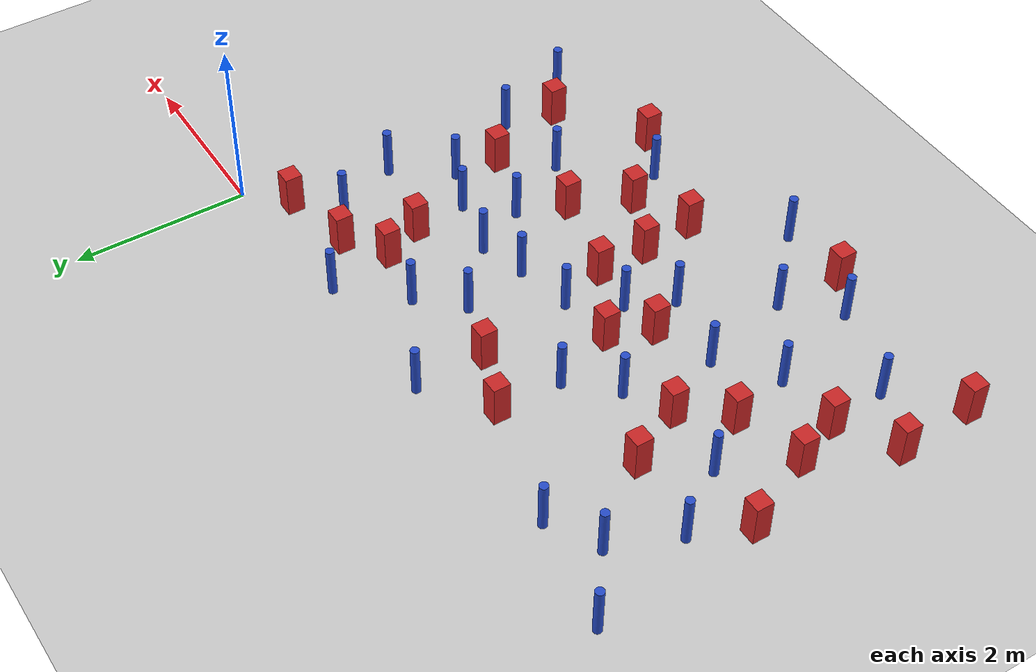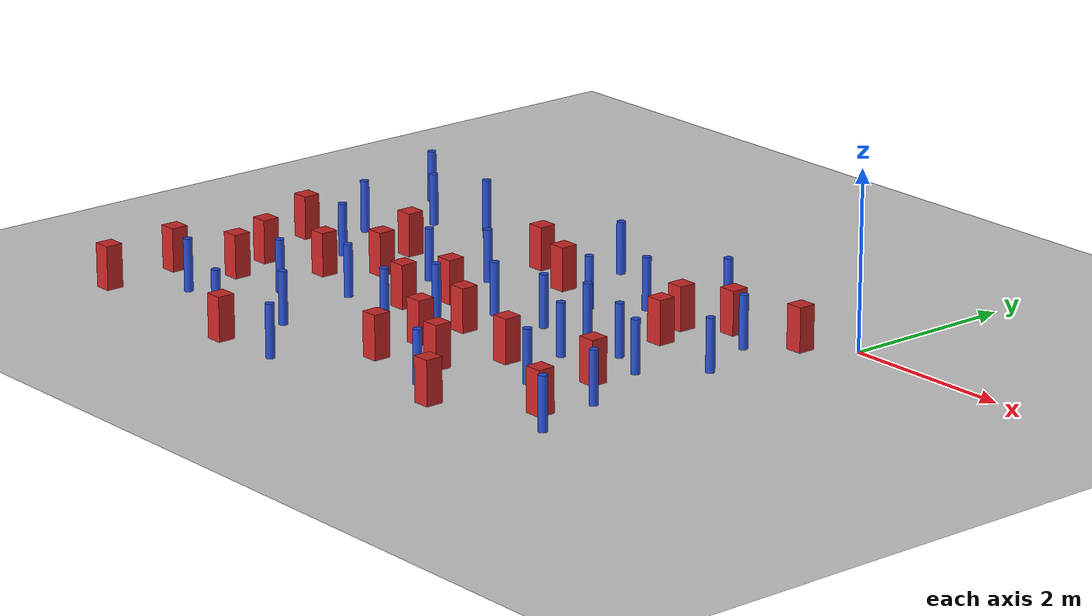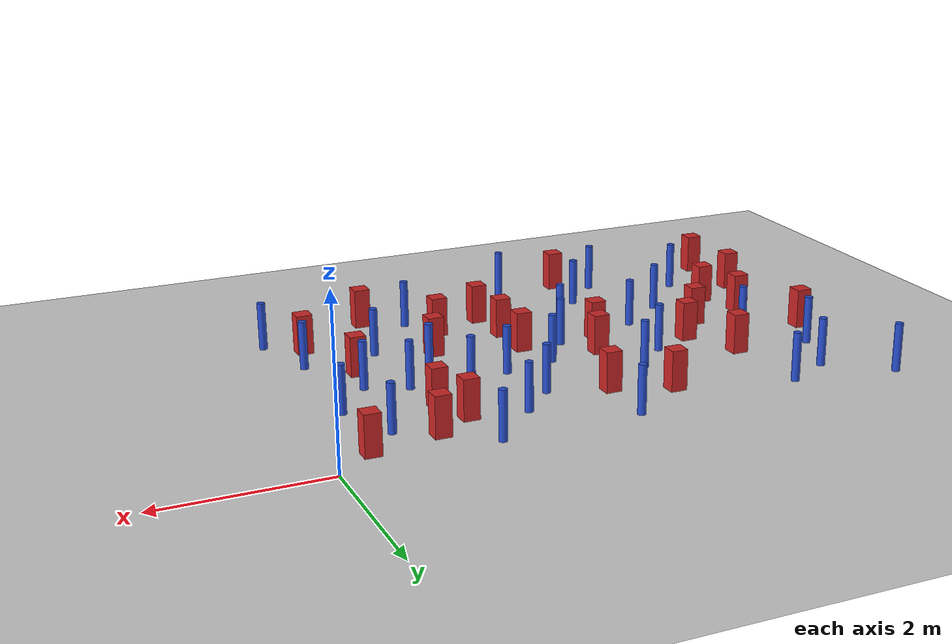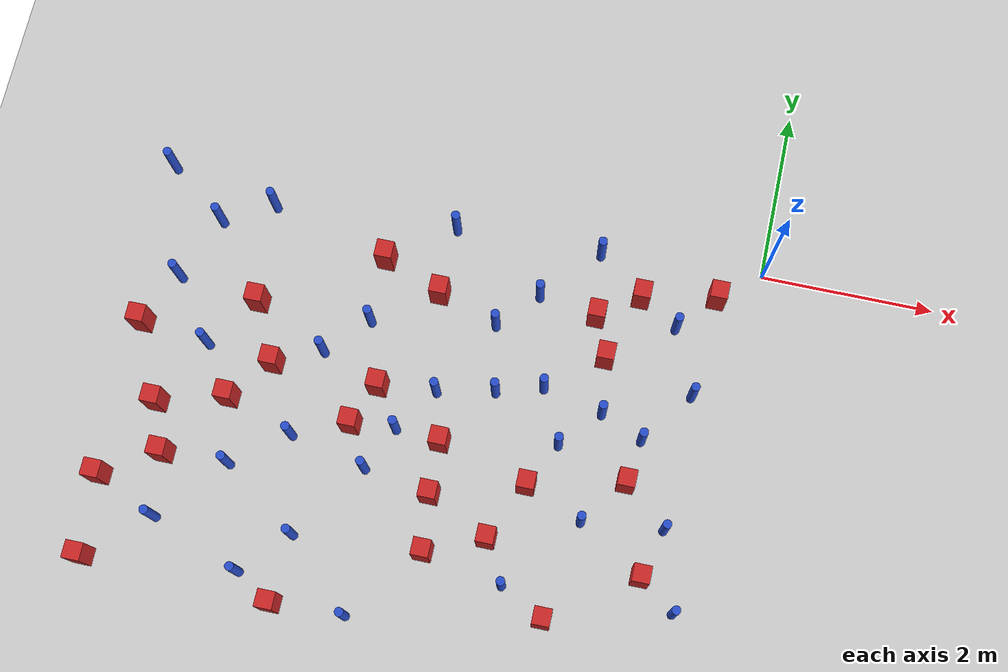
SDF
<sdf version="1.6">
 <world name="default">
  <model name="ground_plane">
   <static>1</static>
   <link name="link">
    <collision name="collision">
     <geometry><plane><normal>0 0 1</normal><size>100 100</size></plane></geometry>
     <surface><friction><ode><mu>100</mu><mu2>50</mu2></ode></friction></surface>
    </collision>
    <visual name="visual">
     <cast_shadows>0</cast_shadows>
     <geometry><plane><normal>0 0 1</normal><size>100 100</size></plane></geometry>
     <material>
      <ambient>1.0 1.0 1.0 1.0</ambient>
      <diffuse>0.8 0.8 0.8 1.0</diffuse>
      <specular>0.01 0.01 0.01 1.000000</specular>
     </material>
    </visual>
   </link>
  </model>
  <model name="pole_obstacle4">
   <static>true</static>
   <pose>-6.97828642345 -0.122020516377 7.38925637345e-09 -8.47170692799e-08 1.24976765077e-08 -1.74513093018e-07</pose>
   <link name="link">
    <pose>0 0 0.3 0 -0 0</pose>
    <inertial>
     <mass>1</mass>
     <inertia><ixx>0.145833</ixx><ixy>0</ixy><ixz>0</ixz><iyy>0.145833</iyy><iyz>0</iyz><izz>0.125</izz></inertia>
    </inertial>
    <collision name="collision">
     <geometry><cylinder><radius>0.05</radius><length>.6</length></cylinder></geometry>
    </collision>
    <visual name="visual">
     <geometry><cylinder><radius>0.05</radius><length>.6</length></cylinder></geometry>
     <material>
      <script><name>Gazebo/Blue</name><uri>file://media/materials/scripts/gazebo.material</uri></script>
     </material>
    </visual>
   </link>
  </model>
  <model name="pole_obstacle6">
   <static>true</static>
   <pose>-5.47152943793 -3.41896249044 7.38925637345e-09 -8.47170692798e-08 1.24976764937e-08 -1.74513093023e-07</pose>
   <link name="link">
    <pose>0 0 0.3 0 -0 0</pose>
    <inertial>
     <mass>1</mass>
     <inertia><ixx>0.145833</ixx><ixy>0</ixy><ixz>0</ixz><iyy>0.145833</iyy><iyz>0</iyz><izz>0.125</izz></inertia>
    </inertial>
    <collision name="collision">
     <geometry><cylinder><radius>0.05</radius><length>.6</length></cylinder></geometry>
    </collision>
    <visual name="visual">
     <geometry><cylinder><radius>0.05</radius><length>.6</length></cylinder></geometry>
     <material>
      <script><name>Gazebo/Blue</name><uri>file://media/materials/scripts/gazebo.material</uri></script>
     </material>
    </visual>
   </link>
  </model>
  <model name="pole_obstacle14">
   <static>true</static>
   <pose>-6.56713105272 -1.41324217185 7.38925637345e-09 -8.471706928e-08 1.24976765134e-08 -1.74513093015e-07</pose>
   <link name="link">
    <pose>0 0 0.3 0 -0 0</pose>
    <inertial>
     <mass>1</mass>
     <inertia><ixx>0.145833</ixx><ixy>0</ixy><ixz>0</ixz><iyy>0.145833</iyy><iyz>0</iyz><izz>0.125</izz></inertia>
    </inertial>
    <collision name="collision">
     <geometry><cylinder><radius>0.05</radius><length>.6</length></cylinder></geometry>
    </collision>
    <visual name="visual">
     <geometry><cylinder><radius>0.05</radius><length>.6</length></cylinder></geometry>
     <material>
      <script><name>Gazebo/Blue</name><uri>file://media/materials/scripts/gazebo.material</uri></script>
     </material>
    </visual>
   </link>
  </model>
  <model name="pole_obstacle15">
   <static>true</static>
   <pose>-5.07149582232 -4.56152207315 7.38925637345e-09 -8.47170692796e-08 1.24976764786e-08 -1.74513093032e-07</pose>
   <link name="link">
    <pose>0 0 0.3 0 -0 0</pose>
    <inertial>
     <mass>1</mass>
     <inertia><ixx>0.145833</ixx><ixy>0</ixy><ixz>0</ixz><iyy>0.145833</iyy><iyz>0</iyz><izz>0.125</izz></inertia>
    </inertial>
    <collision name="collision">
     <geometry><cylinder><radius>0.05</radius><length>.6</length></cylinder></geometry>
    </collision>
    <visual name="visual">
     <geometry><cylinder><radius>0.05</radius><length>.6</length></cylinder></geometry>
     <material>
      <script><name>Gazebo/Blue</name><uri>file://media/materials/scripts/gazebo.material</uri></script>
     </material>
    </visual>
   </link>
  </model>
  <model name="square_post_obstacle25">
   <static>true</static>
   <pose>-3.21224001632 -2.687449287 1.91545236811e-07 -7.35059704564e-06 1.12565212e-07 2.39332434364e-05</pose>
   <link name="link">
    <pose>0 0 0.25 0 -0 0</pose>
    <inertial>
     <mass>100</mass>
     <inertia>
      <ixx>0.166667</ixx>
      <ixy>0</ixy>
      <ixz>0</ixz>
      <iyy>0.166667</iyy>
      <iyz>0</iyz>
      <izz>0.166667</izz>
     </inertia>
    </inertial>
    <collision name="collision"><geometry><box><size>.2 .2 .5</size></box></geometry></collision>
    <visual name="visual">
     <geometry><box><size>.2 .2 .5</size></box></geometry>
     <material>
      <script><name>Gazebo/Red</name><uri>file://media/materials/scripts/gazebo.material</uri></script>
     </material>
    </visual>
   </link>
  </model>
  <model name="square_post_obstacle30">
   <static>true</static>
   <pose>-1.08252601619 -2.7141180427 1.91545236811e-07 -7.35059704564e-06 1.12565212e-07 2.39332434364e-05</pose>
   <link name="link">
    <pose>0 0 0.25 0 -0 0</pose>
    <inertial>
     <mass>100</mass>
     <inertia>
      <ixx>0.166667</ixx>
      <ixy>0</ixy>
      <ixz>0</ixz>
      <iyy>0.166667</iyy>
      <iyz>0</iyz>
      <izz>0.166667</izz>
     </inertia>
    </inertial>
    <collision name="collision"><geometry><box><size>.2 .2 .5</size></box></geometry></collision>
    <visual name="visual">
     <geometry><box><size>.2 .2 .5</size></box></geometry>
     <material>
      <script><name>Gazebo/Red</name><uri>file://media/materials/scripts/gazebo.material</uri></script>
     </material>
    </visual>
   </link>
  </model>
  <model name="pole_obstacle20">
   <static>true</static>
   <pose>-6.13176661263 -4.16321985907 7.38925637345e-09 -8.47170692796e-08 1.24976764786e-08 -1.74513093032e-07</pose>
   <link name="link">
    <pose>0 0 0.3 0 -0 0</pose>
    <inertial>
     <mass>1</mass>
     <inertia><ixx>0.145833</ixx><ixy>0</ixy><ixz>0</ixz><iyy>0.145833</iyy><iyz>0</iyz><izz>0.125</izz></inertia>
    </inertial>
    <collision name="collision">
     <geometry><cylinder><radius>0.05</radius><length>.6</length></cylinder></geometry>
    </collision>
    <visual name="visual">
     <geometry><cylinder><radius>0.05</radius><length>.6</length></cylinder></geometry>
     <material>
      <script><name>Gazebo/Blue</name><uri>file://media/materials/scripts/gazebo.material</uri></script>
     </material>
    </visual>
   </link>
  </model>
  <model name="pole_obstacle21">
   <static>true</static>
   <pose>-0.307714321631 -4.03031959695 7.38925637345e-09 -8.471706928e-08 1.24976765121e-08 -1.74513093013e-07</pose>
   <link name="link">
    <pose>0 0 0.3 0 -0 0</pose>
    <inertial>
     <mass>1</mass>
     <inertia><ixx>0.145833</ixx><ixy>0</ixy><ixz>0</ixz><iyy>0.145833</iyy><iyz>0</iyz><izz>0.125</izz></inertia>
    </inertial>
    <collision name="collision">
     <geometry><cylinder><radius>0.05</radius><length>.6</length></cylinder></geometry>
    </collision>
    <visual name="visual">
     <geometry><cylinder><radius>0.05</radius><length>.6</length></cylinder></geometry>
     <material>
      <script><name>Gazebo/Blue</name><uri>file://media/materials/scripts/gazebo.material</uri></script>
     </material>
    </visual>
   </link>
  </model>
  <model name="square_post_obstacle36">
   <static>true</static>
   <pose>-1.78043701023 -0.893414500379 1.91545236811e-07 -7.35059704564e-06 1.12565212e-07 2.39332434364e-05</pose>
   <link name="link">
    <pose>0 0 0.25 0 -0 0</pose>
    <inertial>
     <mass>100</mass>
     <inertia>
      <ixx>0.166667</ixx>
      <ixy>0</ixy>
      <ixz>0</ixz>
      <iyy>0.166667</iyy>
      <iyz>0</iyz>
      <izz>0.166667</izz>
     </inertia>
    </inertial>
    <collision name="collision"><geometry><box><size>.2 .2 .5</size></box></geometry></collision>
    <visual name="visual">
     <geometry><box><size>.2 .2 .5</size></box></geometry>
     <material>
      <script><name>Gazebo/Red</name><uri>file://media/materials/scripts/gazebo.material</uri></script>
     </material>
    </visual>
   </link>
  </model>
  <model name="pole_obstacle42">
   <static>true</static>
   <pose>-1.49891377134 -1.99895230244 7.38925637345e-09 -8.47170692799e-08 1.24976765023e-08 -1.74513093019e-07</pose>
   <link name="link">
    <pose>0 0 0.3 0 -0 0</pose>
    <inertial>
     <mass>1</mass>
     <inertia><ixx>0.145833</ixx><ixy>0</ixy><ixz>0</ixz><iyy>0.145833</iyy><iyz>0</iyz><izz>0.125</izz></inertia>
    </inertial>
    <collision name="collision">
     <geometry><cylinder><radius>0.05</radius><length>.6</length></cylinder></geometry>
    </collision>
    <visual name="visual">
     <geometry><cylinder><radius>0.05</radius><length>.6</length></cylinder></geometry>
     <material>
      <script><name>Gazebo/Blue</name><uri>file://media/materials/scripts/gazebo.material</uri></script>
     </material>
    </visual>
   </link>
  </model>
  <model name="square_post_obstacle42">
   <static>true</static>
   <pose>-0.470619755698 -0.397356148031 1.91545236811e-07 -7.35059704564e-06 1.12565212e-07 2.39332434364e-05</pose>
   <link name="link">
    <pose>0 0 0.25 0 -0 0</pose>
    <inertial>
     <mass>100</mass>
     <inertia>
      <ixx>0.166667</ixx>
      <ixy>0</ixy>
      <ixz>0</ixz>
      <iyy>0.166667</iyy>
      <iyz>0</iyz>
      <izz>0.166667</izz>
     </inertia>
    </inertial>
    <collision name="collision"><geometry><box><size>.2 .2 .5</size></box></geometry></collision>
    <visual name="visual">
     <geometry><box><size>.2 .2 .5</size></box></geometry>
     <material>
      <script><name>Gazebo/Red</name><uri>file://media/materials/scripts/gazebo.material</uri></script>
     </material>
    </visual>
   </link>
  </model>
  <model name="square_post_obstacle44">
   <static>true</static>
   <pose>-6.8508309339 -2.01764892807 1.91545236811e-07 -7.35059704564e-06 1.12565212e-07 2.39332434364e-05</pose>
   <link name="link">
    <pose>0 0 0.25 0 -0 0</pose>
    <inertial>
     <mass>100</mass>
     <inertia>
      <ixx>0.166667</ixx>
      <ixy>0</ixy>
      <ixz>0</ixz>
      <iyy>0.166667</iyy>
      <iyz>0</iyz>
      <izz>0.166667</izz>
     </inertia>
    </inertial>
    <collision name="collision"><geometry><box><size>.2 .2 .5</size></box></geometry></collision>
    <visual name="visual">
     <geometry><box><size>.2 .2 .5</size></box></geometry>
     <material>
      <script><name>Gazebo/Red</name><uri>file://media/materials/scripts/gazebo.material</uri></script>
     </material>
    </visual>
   </link>
  </model>
  <model name="pole_obstacle47">
   <static>true</static>
   <pose>-4.7407045459 -1.93888154877 7.38925637345e-09 -8.471706928e-08 1.24976765134e-08 -1.74513093015e-07</pose>
   <link name="link">
    <pose>0 0 0.3 0 -0 0</pose>
    <inertial>
     <mass>1</mass>
     <inertia><ixx>0.145833</ixx><ixy>0</ixy><ixz>0</ixz><iyy>0.145833</iyy><iyz>0</iyz><izz>0.125</izz></inertia>
    </inertial>
    <collision name="collision">
     <geometry><cylinder><radius>0.05</radius><length>.6</length></cylinder></geometry>
    </collision>
    <visual name="visual">
     <geometry><cylinder><radius>0.05</radius><length>.6</length></cylinder></geometry>
     <material>
      <script><name>Gazebo/Blue</name><uri>file://media/materials/scripts/gazebo.material</uri></script>
     </material>
    </visual>
   </link>
  </model>
  <model name="pole_obstacle54">
   <static>true</static>
   <pose>-4.5809045447 -4.04532151931 7.38925637345e-09 -8.47170692796e-08 1.24976764791e-08 -1.74513093031e-07</pose>
   <link name="link">
    <pose>0 0 0.3 0 -0 0</pose>
    <inertial>
     <mass>1</mass>
     <inertia><ixx>0.145833</ixx><ixy>0</ixy><ixz>0</ixz><iyy>0.145833</iyy><iyz>0</iyz><izz>0.125</izz></inertia>
    </inertial>
    <collision name="collision">
     <geometry><cylinder><radius>0.05</radius><length>.6</length></cylinder></geometry>
    </collision>
    <visual name="visual">
     <geometry><cylinder><radius>0.05</radius><length>.6</length></cylinder></geometry>
     <material>
      <script><name>Gazebo/Blue</name><uri>file://media/materials/scripts/gazebo.material</uri></script>
     </material>
    </visual>
   </link>
  </model>
  <model name="square_post_obstacle64">
   <static>true</static>
   <pose>-5.66374018354 -2.67418703032 1.91545236811e-07 -7.35059704564e-06 1.12565212e-07 2.39332434364e-05</pose>
   <link name="link">
    <pose>0 0 0.25 0 -0 0</pose>
    <inertial>
     <mass>100</mass>
     <inertia>
      <ixx>0.166667</ixx>
      <ixy>0</ixy>
      <ixz>0</ixz>
      <iyy>0.166667</iyy>
      <iyz>0</iyz>
      <izz>0.166667</izz>
     </inertia>
    </inertial>
    <collision name="collision"><geometry><box><size>.2 .2 .5</size></box></geometry></collision>
    <visual name="visual">
     <geometry><box><size>.2 .2 .5</size></box></geometry>
     <material>
      <script><name>Gazebo/Red</name><uri>file://media/materials/scripts/gazebo.material</uri></script>
     </material>
    </visual>
   </link>
  </model>
  <model name="square_post_obstacle65">
   <static>true</static>
   <pose>-6.44182738781 -2.89032319352 1.91545236811e-07 -7.35059704564e-06 1.12565212e-07 2.39332434364e-05</pose>
   <link name="link">
    <pose>0 0 0.25 0 -0 0</pose>
    <inertial>
     <mass>100</mass>
     <inertia>
      <ixx>0.166667</ixx>
      <ixy>0</ixy>
      <ixz>0</ixz>
      <iyy>0.166667</iyy>
      <iyz>0</iyz>
      <izz>0.166667</izz>
     </inertia>
    </inertial>
    <collision name="collision"><geometry><box><size>.2 .2 .5</size></box></geometry></collision>
    <visual name="visual">
     <geometry><box><size>.2 .2 .5</size></box></geometry>
     <material>
      <script><name>Gazebo/Red</name><uri>file://media/materials/scripts/gazebo.material</uri></script>
     </material>
    </visual>
   </link>
  </model>
  <model name="pole_obstacle64">
   <static>true</static>
   <pose>-4.86457030965 -2.95545743978 7.38925637345e-09 -8.47170692798e-08 1.24976764937e-08 -1.74513093023e-07</pose>
   <link name="link">
    <pose>0 0 0.3 0 -0 0</pose>
    <inertial>
     <mass>1</mass>
     <inertia><ixx>0.145833</ixx><ixy>0</ixy><ixz>0</ixz><iyy>0.145833</iyy><iyz>0</iyz><izz>0.125</izz></inertia>
    </inertial>
    <collision name="collision">
     <geometry><cylinder><radius>0.05</radius><length>.6</length></cylinder></geometry>
    </collision>
    <visual name="visual">
     <geometry><cylinder><radius>0.05</radius><length>.6</length></cylinder></geometry>
     <material>
      <script><name>Gazebo/Blue</name><uri>file://media/materials/scripts/gazebo.material</uri></script>
     </material>
    </visual>
   </link>
  </model>
  <model name="square_post_obstacle69">
   <static>true</static>
   <pose>-5.60898819726 -1.51559767061 1.91545236811e-07 -7.35059704564e-06 1.12565212e-07 2.39332434364e-05</pose>
   <link name="link">
    <pose>0 0 0.25 0 -0 0</pose>
    <inertial>
     <mass>100</mass>
     <inertia>
      <ixx>0.166667</ixx>
      <ixy>0</ixy>
      <ixz>0</ixz>
      <iyy>0.166667</iyy>
      <iyz>0</iyz>
      <izz>0.166667</izz>
     </inertia>
    </inertial>
    <collision name="collision"><geometry><box><size>.2 .2 .5</size></box></geometry></collision>
    <visual name="visual">
     <geometry><box><size>.2 .2 .5</size></box></geometry>
     <material>
      <script><name>Gazebo/Red</name><uri>file://media/materials/scripts/gazebo.material</uri></script>
     </material>
    </visual>
   </link>
  </model>
  <model name="pole_obstacle67">
   <static>true</static>
   <pose>-4.29661398742 -1.478413802 7.38925637345e-09 -8.471706928e-08 1.24976765134e-08 -1.74513093015e-07</pose>
   <link name="link">
    <pose>0 0 0.3 0 -0 0</pose>
    <inertial>
     <mass>1</mass>
     <inertia><ixx>0.145833</ixx><ixy>0</ixy><ixz>0</ixz><iyy>0.145833</iyy><iyz>0</iyz><izz>0.125</izz></inertia>
    </inertial>
    <collision name="collision">
     <geometry><cylinder><radius>0.05</radius><length>.6</length></cylinder></geometry>
    </collision>
    <visual name="visual">
     <geometry><cylinder><radius>0.05</radius><length>.6</length></cylinder></geometry>
     <material>
      <script><name>Gazebo/Blue</name><uri>file://media/materials/scripts/gazebo.material</uri></script>
     </material>
    </visual>
   </link>
  </model>
  <model name="square_post_obstacle71">
   <static>true</static>
   <pose>-3.12418479222 -3.92707856376 1.91545236811e-07 -7.35059704564e-06 1.12565212e-07 2.39332434364e-05</pose>
   <link name="link">
    <pose>0 0 0.25 0 -0 0</pose>
    <inertial>
     <mass>100</mass>
     <inertia>
      <ixx>0.166667</ixx>
      <ixy>0</ixy>
      <ixz>0</ixz>
      <iyy>0.166667</iyy>
      <iyz>0</iyz>
      <izz>0.166667</izz>
     </inertia>
    </inertial>
    <collision name="collision"><geometry><box><size>.2 .2 .5</size></box></geometry></collision>
    <visual name="visual">
     <geometry><box><size>.2 .2 .5</size></box></geometry>
     <material>
      <script><name>Gazebo/Red</name><uri>file://media/materials/scripts/gazebo.material</uri></script>
     </material>
    </visual>
   </link>
  </model>
  <model name="square_post_obstacle72">
   <static>true</static>
   <pose>-4.29121775904 -0.713728275902 1.91545236811e-07 -7.35059704564e-06 1.12565212e-07 2.39332434364e-05</pose>
   <link name="link">
    <pose>0 0 0.25 0 -0 0</pose>
    <inertial>
     <mass>100</mass>
     <inertia>
      <ixx>0.166667</ixx>
      <ixy>0</ixy>
      <ixz>0</ixz>
      <iyy>0.166667</iyy>
      <iyz>0</iyz>
      <izz>0.166667</izz>
     </inertia>
    </inertial>
    <collision name="collision"><geometry><box><size>.2 .2 .5</size></box></geometry></collision>
    <visual name="visual">
     <geometry><box><size>.2 .2 .5</size></box></geometry>
     <material>
      <script><name>Gazebo/Red</name><uri>file://media/materials/scripts/gazebo.material</uri></script>
     </material>
    </visual>
   </link>
  </model>
  <model name="square_post_obstacle75">
   <static>true</static>
   <pose>-6.85224369591 -3.82735771257 1.91545236811e-07 -7.35059704564e-06 1.12565212e-07 2.39332434364e-05</pose>
   <link name="link">
    <pose>0 0 0.25 0 -0 0</pose>
    <inertial>
     <mass>100</mass>
     <inertia>
      <ixx>0.166667</ixx>
      <ixy>0</ixy>
      <ixz>0</ixz>
      <iyy>0.166667</iyy>
      <iyz>0</iyz>
      <izz>0.166667</izz>
     </inertia>
    </inertial>
    <collision name="collision"><geometry><box><size>.2 .2 .5</size></box></geometry></collision>
    <visual name="visual">
     <geometry><box><size>.2 .2 .5</size></box></geometry>
     <material>
      <script><name>Gazebo/Red</name><uri>file://media/materials/scripts/gazebo.material</uri></script>
     </material>
    </visual>
   </link>
  </model>
  <model name="pole_obstacle73">
   <static>true</static>
   <pose>-2.20044635976 -4.11546640587 7.38925637345e-09 -8.47170692798e-08 1.24976765033e-08 -1.74513093019e-07</pose>
   <link name="link">
    <pose>0 0 0.3 0 -0 0</pose>
    <inertial>
     <mass>1</mass>
     <inertia><ixx>0.145833</ixx><ixy>0</ixy><ixz>0</ixz><iyy>0.145833</iyy><iyz>0</iyz><izz>0.125</izz></inertia>
    </inertial>
    <collision name="collision">
     <geometry><cylinder><radius>0.05</radius><length>.6</length></cylinder></geometry>
    </collision>
    <visual name="visual">
     <geometry><cylinder><radius>0.05</radius><length>.6</length></cylinder></geometry>
     <material>
      <script><name>Gazebo/Blue</name><uri>file://media/materials/scripts/gazebo.material</uri></script>
     </material>
    </visual>
   </link>
  </model>
  <model name="pole_obstacle85">
   <static>true</static>
   <pose>-6.05392795432 -2.12139565184 7.38925637345e-09 -8.47170692798e-08 1.24976764937e-08 -1.74513093023e-07</pose>
   <link name="link">
    <pose>0 0 0.3 0 -0 0</pose>
    <inertial>
     <mass>1</mass>
     <inertia><ixx>0.145833</ixx><ixy>0</ixy><ixz>0</ixz><iyy>0.145833</iyy><iyz>0</iyz><izz>0.125</izz></inertia>
    </inertial>
    <collision name="collision">
     <geometry><cylinder><radius>0.05</radius><length>.6</length></cylinder></geometry>
    </collision>
    <visual name="visual">
     <geometry><cylinder><radius>0.05</radius><length>.6</length></cylinder></geometry>
     <material>
      <script><name>Gazebo/Blue</name><uri>file://media/materials/scripts/gazebo.material</uri></script>
     </material>
    </visual>
   </link>
  </model>
  <model name="pole_obstacle92">
   <static>true</static>
   <pose>-0.864349436259 -0.840856665632 7.38925637345e-09 -8.47170692799e-08 1.24976765008e-08 -1.7451309302e-07</pose>
   <link name="link">
    <pose>0 0 0.3 0 -0 0</pose>
    <inertial>
     <mass>1</mass>
     <inertia><ixx>0.145833</ixx><ixy>0</ixy><ixz>0</ixz><iyy>0.145833</iyy><iyz>0</iyz><izz>0.125</izz></inertia>
    </inertial>
    <collision name="collision">
     <geometry><cylinder><radius>0.05</radius><length>.6</length></cylinder></geometry>
    </collision>
    <visual name="visual">
     <geometry><cylinder><radius>0.05</radius><length>.6</length></cylinder></geometry>
     <material>
      <script><name>Gazebo/Blue</name><uri>file://media/materials/scripts/gazebo.material</uri></script>
     </material>
    </visual>
   </link>
  </model>
  <model name="square_post_obstacle83">
   <static>true</static>
   <pose>-2.16185571674 -2.96513286257 1.91545236811e-07 -7.35059704564e-06 1.12565212e-07 2.39332434364e-05</pose>
   <link name="link">
    <pose>0 0 0.25 0 -0 0</pose>
    <inertial>
     <mass>100</mass>
     <inertia>
      <ixx>0.166667</ixx>
      <ixy>0</ixy>
      <ixz>0</ixz>
      <iyy>0.166667</iyy>
      <iyz>0</iyz>
      <izz>0.166667</izz>
     </inertia>
    </inertial>
    <collision name="collision"><geometry><box><size>.2 .2 .5</size></box></geometry></collision>
    <visual name="visual">
     <geometry><box><size>.2 .2 .5</size></box></geometry>
     <material>
      <script><name>Gazebo/Red</name><uri>file://media/materials/scripts/gazebo.material</uri></script>
     </material>
    </visual>
   </link>
  </model>
  <model name="pole_obstacle97">
   <static>true</static>
   <pose>-3.57260155655 -0.189744390769 7.38925637345e-09 -8.47170692796e-08 1.24976764734e-08 -1.74513093037e-07</pose>
   <link name="link">
    <pose>0 0 0.3 0 -0 0</pose>
    <inertial>
     <mass>1</mass>
     <inertia><ixx>0.145833</ixx><ixy>0</ixy><ixz>0</ixz><iyy>0.145833</iyy><iyz>0</iyz><izz>0.125</izz></inertia>
    </inertial>
    <collision name="collision">
     <geometry><cylinder><radius>0.05</radius><length>.6</length></cylinder></geometry>
    </collision>
    <visual name="visual">
     <geometry><cylinder><radius>0.05</radius><length>.6</length></cylinder></geometry>
     <material>
      <script><name>Gazebo/Blue</name><uri>file://media/materials/scripts/gazebo.material</uri></script>
     </material>
    </visual>
   </link>
  </model>
  <model name="pole_obstacle111">
   <static>true</static>
   <pose>-2.88603859532 -1.23094956958 7.38925637345e-09 -8.471706928e-08 1.24976765152e-08 -1.74513093012e-07</pose>
   <link name="link">
    <pose>0 0 0.3 0 -0 0</pose>
    <inertial>
     <mass>1</mass>
     <inertia><ixx>0.145833</ixx><ixy>0</ixy><ixz>0</ixz><iyy>0.145833</iyy><iyz>0</iyz><izz>0.125</izz></inertia>
    </inertial>
    <collision name="collision">
     <geometry><cylinder><radius>0.05</radius><length>.6</length></cylinder></geometry>
    </collision>
    <visual name="visual">
     <geometry><cylinder><radius>0.05</radius><length>.6</length></cylinder></geometry>
     <material>
      <script><name>Gazebo/Blue</name><uri>file://media/materials/scripts/gazebo.material</uri></script>
     </material>
    </visual>
   </link>
  </model>
  <model name="pole_obstacle114">
   <static>true</static>
   <pose>-1.87304465064 -0.146050060293 7.38925637345e-09 -8.47170692798e-08 1.24976765004e-08 -1.7451309302e-07</pose>
   <link name="link">
    <pose>0 0 0.3 0 -0 0</pose>
    <inertial>
     <mass>1</mass>
     <inertia><ixx>0.145833</ixx><ixy>0</ixy><ixz>0</ixz><iyy>0.145833</iyy><iyz>0</iyz><izz>0.125</izz></inertia>
    </inertial>
    <collision name="collision">
     <geometry><cylinder><radius>0.05</radius><length>.6</length></cylinder></geometry>
    </collision>
    <visual name="visual">
     <geometry><cylinder><radius>0.05</radius><length>.6</length></cylinder></geometry>
     <material>
      <script><name>Gazebo/Blue</name><uri>file://media/materials/scripts/gazebo.material</uri></script>
     </material>
    </visual>
   </link>
  </model>
  <model name="square_post_obstacle104">
   <static>true</static>
   <pose>-1.58570620764 -1.35463081902 1.91545236811e-07 -7.35059704564e-06 1.12565212e-07 2.39332434364e-05</pose>
   <link name="link">
    <pose>0 0 0.25 0 -0 0</pose>
    <inertial>
     <mass>100</mass>
     <inertia>
      <ixx>0.166667</ixx>
      <ixy>0</ixy>
      <ixz>0</ixz>
      <iyy>0.166667</iyy>
      <iyz>0</iyz>
      <izz>0.166667</izz>
     </inertia>
    </inertial>
    <collision name="collision"><geometry><box><size>.2 .2 .5</size></box></geometry></collision>
    <visual name="visual">
     <geometry><box><size>.2 .2 .5</size></box></geometry>
     <material>
      <script><name>Gazebo/Red</name><uri>file://media/materials/scripts/gazebo.material</uri></script>
     </material>
    </visual>
   </link>
  </model>
  <model name="square_post_obstacle112">
   <static>true</static>
   <pose>-6.79157962081 -4.7393969204 1.91545236811e-07 -7.35059704564e-06 1.12565212e-07 2.39332434364e-05</pose>
   <link name="link">
    <pose>0 0 0.25 0 -0 0</pose>
    <inertial>
     <mass>100</mass>
     <inertia>
      <ixx>0.166667</ixx>
      <ixy>0</ixy>
      <ixz>0</ixz>
      <iyy>0.166667</iyy>
      <iyz>0</iyz>
      <izz>0.166667</izz>
     </inertia>
    </inertial>
    <collision name="collision"><geometry><box><size>.2 .2 .5</size></box></geometry></collision>
    <visual name="visual">
     <geometry><box><size>.2 .2 .5</size></box></geometry>
     <material>
      <script><name>Gazebo/Red</name><uri>file://media/materials/scripts/gazebo.material</uri></script>
     </material>
    </visual>
   </link>
  </model>
  <model name="pole_obstacle122">
   <static>true</static>
   <pose>-6.27007244262 -0.65905316527 7.38925637345e-09 -8.47170692799e-08 1.24976765038e-08 -1.74513093018e-07</pose>
   <link name="link">
    <pose>0 0 0.3 0 -0 0</pose>
    <inertial>
     <mass>1</mass>
     <inertia><ixx>0.145833</ixx><ixy>0</ixy><ixz>0</ixz><iyy>0.145833</iyy><iyz>0</iyz><izz>0.125</izz></inertia>
    </inertial>
    <collision name="collision">
     <geometry><cylinder><radius>0.05</radius><length>.6</length></cylinder></geometry>
    </collision>
    <visual name="visual">
     <geometry><cylinder><radius>0.05</radius><length>.6</length></cylinder></geometry>
     <material>
      <script><name>Gazebo/Blue</name><uri>file://media/materials/scripts/gazebo.material</uri></script>
     </material>
    </visual>
   </link>
  </model>
  <model name="pole_obstacle131">
   <static>true</static>
   <pose>-2.46429553093 -0.785262728391 7.38925637345e-09 -8.471706928e-08 1.24976765177e-08 -1.74513093012e-07</pose>
   <link name="link">
    <pose>0 0 0.3 0 -0 0</pose>
    <inertial>
     <mass>1</mass>
     <inertia><ixx>0.145833</ixx><ixy>0</ixy><ixz>0</ixz><iyy>0.145833</iyy><iyz>0</iyz><izz>0.125</izz></inertia>
    </inertial>
    <collision name="collision">
     <geometry><cylinder><radius>0.05</radius><length>.6</length></cylinder></geometry>
    </collision>
    <visual name="visual">
     <geometry><cylinder><radius>0.05</radius><length>.6</length></cylinder></geometry>
     <material>
      <script><name>Gazebo/Blue</name><uri>file://media/materials/scripts/gazebo.material</uri></script>
     </material>
    </visual>
   </link>
  </model>
  <model name="pole_obstacle132">
   <static>true</static>
   <pose>-3.97159550513 -3.1603477513 7.38925637345e-09 -8.47170692797e-08 1.24976764812e-08 -1.74513093031e-07</pose>
   <link name="link">
    <pose>0 0 0.3 0 -0 0</pose>
    <inertial>
     <mass>1</mass>
     <inertia><ixx>0.145833</ixx><ixy>0</ixy><ixz>0</ixz><iyy>0.145833</iyy><iyz>0</iyz><izz>0.125</izz></inertia>
    </inertial>
    <collision name="collision">
     <geometry><cylinder><radius>0.05</radius><length>.6</length></cylinder></geometry>
    </collision>
    <visual name="visual">
     <geometry><cylinder><radius>0.05</radius><length>.6</length></cylinder></geometry>
     <material>
      <script><name>Gazebo/Blue</name><uri>file://media/materials/scripts/gazebo.material</uri></script>
     </material>
    </visual>
   </link>
  </model>
  <model name="pole_obstacle135">
   <static>true</static>
   <pose>-3.38062473892 -2.13448183233 7.38925637345e-09 -8.471706928e-08 1.24976765098e-08 -1.74513093016e-07</pose>
   <link name="link">
    <pose>0 0 0.3 0 -0 0</pose>
    <inertial>
     <mass>1</mass>
     <inertia><ixx>0.145833</ixx><ixy>0</ixy><ixz>0</ixz><iyy>0.145833</iyy><iyz>0</iyz><izz>0.125</izz></inertia>
    </inertial>
    <collision name="collision">
     <geometry><cylinder><radius>0.05</radius><length>.6</length></cylinder></geometry>
    </collision>
    <visual name="visual">
     <geometry><cylinder><radius>0.05</radius><length>.6</length></cylinder></geometry>
     <material>
      <script><name>Gazebo/Blue</name><uri>file://media/materials/scripts/gazebo.material</uri></script>
     </material>
    </visual>
   </link>
  </model>
  <model name="pole_obstacle139">
   <static>true</static>
   <pose>-2.72436365712 -1.99808478094 7.38925637345e-09 -8.471706928e-08 1.249767651e-08 -1.74513093015e-07</pose>
   <link name="link">
    <pose>0 0 0.3 0 -0 0</pose>
    <inertial>
     <mass>1</mass>
     <inertia><ixx>0.145833</ixx><ixy>0</ixy><ixz>0</ixz><iyy>0.145833</iyy><iyz>0</iyz><izz>0.125</izz></inertia>
    </inertial>
    <collision name="collision">
     <geometry><cylinder><radius>0.05</radius><length>.6</length></cylinder></geometry>
    </collision>
    <visual name="visual">
     <geometry><cylinder><radius>0.05</radius><length>.6</length></cylinder></geometry>
     <material>
      <script><name>Gazebo/Blue</name><uri>file://media/materials/scripts/gazebo.material</uri></script>
     </material>
    </visual>
   </link>
  </model>
  <model name="square_post_obstacle138">
   <static>true</static>
   <pose>-3.19426891909 -3.29058021461 1.91545236811e-07 -7.35059704564e-06 1.12565212e-07 2.39332434364e-05</pose>
   <link name="link">
    <pose>0 0 0.25 0 -0 0</pose>
    <inertial>
     <mass>100</mass>
     <inertia>
      <ixx>0.166667</ixx>
      <ixy>0</ixy>
      <ixz>0</ixz>
      <iyy>0.166667</iyy>
      <iyz>0</iyz>
      <izz>0.166667</izz>
     </inertia>
    </inertial>
    <collision name="collision"><geometry><box><size>.2 .2 .5</size></box></geometry></collision>
    <visual name="visual">
     <geometry><box><size>.2 .2 .5</size></box></geometry>
     <material>
      <script><name>Gazebo/Red</name><uri>file://media/materials/scripts/gazebo.material</uri></script>
     </material>
    </visual>
   </link>
  </model>
  <model name="pole_obstacle153">
   <static>true</static>
   <pose>-0.543508919076 -1.59186336679 7.38925637345e-09 -8.471706928e-08 1.24976765092e-08 -1.74513093016e-07</pose>
   <link name="link">
    <pose>0 0 0.3 0 -0 0</pose>
    <inertial>
     <mass>1</mass>
     <inertia><ixx>0.145833</ixx><ixy>0</ixy><ixz>0</ixz><iyy>0.145833</iyy><iyz>0</iyz><izz>0.125</izz></inertia>
    </inertial>
    <collision name="collision">
     <geometry><cylinder><radius>0.05</radius><length>.6</length></cylinder></geometry>
    </collision>
    <visual name="visual">
     <geometry><cylinder><radius>0.05</radius><length>.6</length></cylinder></geometry>
     <material>
      <script><name>Gazebo/Blue</name><uri>file://media/materials/scripts/gazebo.material</uri></script>
     </material>
    </visual>
   </link>
  </model>
  <model name="square_post_obstacle155">
   <static>true</static>
   <pose>-2.46869398045 -3.64234763928 1.91545236811e-07 -7.35059704564e-06 1.12565212e-07 2.39332434364e-05</pose>
   <link name="link">
    <pose>0 0 0.25 0 -0 0</pose>
    <inertial>
     <mass>100</mass>
     <inertia>
      <ixx>0.166667</ixx>
      <ixy>0</ixy>
      <ixz>0</ixz>
      <iyy>0.166667</iyy>
      <iyz>0</iyz>
      <izz>0.166667</izz>
     </inertia>
    </inertial>
    <collision name="collision"><geometry><box><size>.2 .2 .5</size></box></geometry></collision>
    <visual name="visual">
     <geometry><box><size>.2 .2 .5</size></box></geometry>
     <material>
      <script><name>Gazebo/Red</name><uri>file://media/materials/scripts/gazebo.material</uri></script>
     </material>
    </visual>
   </link>
  </model>
  <model name="square_post_obstacle156">
   <static>true</static>
   <pose>-4.6333585732 -4.81586206036 1.91545236811e-07 -7.35059704564e-06 1.12565212e-07 2.39332434364e-05</pose>
   <link name="link">
    <pose>0 0 0.25 0 -0 0</pose>
    <inertial>
     <mass>100</mass>
     <inertia>
      <ixx>0.166667</ixx>
      <ixy>0</ixy>
      <ixz>0</ixz>
      <iyy>0.166667</iyy>
      <iyz>0</iyz>
      <izz>0.166667</izz>
     </inertia>
    </inertial>
    <collision name="collision"><geometry><box><size>.2 .2 .5</size></box></geometry></collision>
    <visual name="visual">
     <geometry><box><size>.2 .2 .5</size></box></geometry>
     <material>
      <script><name>Gazebo/Red</name><uri>file://media/materials/scripts/gazebo.material</uri></script>
     </material>
    </visual>
   </link>
  </model>
  <model name="pole_obstacle164">
   <static>true</static>
   <pose>-3.80799454868 -4.78888827752 7.38925637345e-09 -8.47170692798e-08 1.24976765033e-08 -1.74513093019e-07</pose>
   <link name="link">
    <pose>0 0 0.3 0 -0 0</pose>
    <inertial>
     <mass>1</mass>
     <inertia><ixx>0.145833</ixx><ixy>0</ixy><ixz>0</ixz><iyy>0.145833</iyy><iyz>0</iyz><izz>0.125</izz></inertia>
    </inertial>
    <collision name="collision">
     <geometry><cylinder><radius>0.05</radius><length>.6</length></cylinder></geometry>
    </collision>
    <visual name="visual">
     <geometry><cylinder><radius>0.05</radius><length>.6</length></cylinder></geometry>
     <material>
      <script><name>Gazebo/Blue</name><uri>file://media/materials/scripts/gazebo.material</uri></script>
     </material>
    </visual>
   </link>
  </model>
  <model name="pole_obstacle173">
   <static>true</static>
   <pose>-2.19840577762 -1.8403678924 7.38925637345e-09 -8.471706928e-08 1.24976765152e-08 -1.74513093012e-07</pose>
   <link name="link">
    <pose>0 0 0.3 0 -0 0</pose>
    <inertial>
     <mass>1</mass>
     <inertia><ixx>0.145833</ixx><ixy>0</ixy><ixz>0</ixz><iyy>0.145833</iyy><iyz>0</iyz><izz>0.125</izz></inertia>
    </inertial>
    <collision name="collision">
     <geometry><cylinder><radius>0.05</radius><length>.6</length></cylinder></geometry>
    </collision>
    <visual name="visual">
     <geometry><cylinder><radius>0.05</radius><length>.6</length></cylinder></geometry>
     <material>
      <script><name>Gazebo/Blue</name><uri>file://media/materials/scripts/gazebo.material</uri></script>
     </material>
    </visual>
   </link>
  </model>
  <model name="pole_obstacle175">
   <static>true</static>
   <pose>-1.00496584459 -2.20976190609 7.38925637345e-09 -8.47170692799e-08 1.24976765076e-08 -1.74513093016e-07</pose>
   <link name="link">
    <pose>0 0 0.3 0 -0 0</pose>
    <inertial>
     <mass>1</mass>
     <inertia><ixx>0.145833</ixx><ixy>0</ixy><ixz>0</ixz><iyy>0.145833</iyy><iyz>0</iyz><izz>0.125</izz></inertia>
    </inertial>
    <collision name="collision">
     <geometry><cylinder><radius>0.05</radius><length>.6</length></cylinder></geometry>
    </collision>
    <visual name="visual">
     <geometry><cylinder><radius>0.05</radius><length>.6</length></cylinder></geometry>
     <material>
      <script><name>Gazebo/Blue</name><uri>file://media/materials/scripts/gazebo.material</uri></script>
     </material>
    </visual>
   </link>
  </model>
  <model name="square_post_obstacle165">
   <static>true</static>
   <pose>-4.03801027737 -2.20310420061 1.91545236811e-07 -7.35059704564e-06 1.12565212e-07 2.39332434364e-05</pose>
   <link name="link">
    <pose>0 0 0.25 0 -0 0</pose>
    <inertial>
     <mass>100</mass>
     <inertia>
      <ixx>0.166667</ixx>
      <ixy>0</ixy>
      <ixz>0</ixz>
      <iyy>0.166667</iyy>
      <iyz>0</iyz>
      <izz>0.166667</izz>
     </inertia>
    </inertial>
    <collision name="collision"><geometry><box><size>.2 .2 .5</size></box></geometry></collision>
    <visual name="visual">
     <geometry><box><size>.2 .2 .5</size></box></geometry>
     <material>
      <script><name>Gazebo/Red</name><uri>file://media/materials/scripts/gazebo.material</uri></script>
     </material>
    </visual>
   </link>
  </model>
  <model name="square_post_obstacle170">
   <static>true</static>
   <pose>-6.21977883697 -3.44381864784 1.91545236811e-07 -7.35059704564e-06 1.12565212e-07 2.39332434364e-05</pose>
   <link name="link">
    <pose>0 0 0.25 0 -0 0</pose>
    <inertial>
     <mass>100</mass>
     <inertia>
      <ixx>0.166667</ixx>
      <ixy>0</ixy>
      <ixz>0</ixz>
      <iyy>0.166667</iyy>
      <iyz>0</iyz>
      <izz>0.166667</izz>
     </inertia>
    </inertial>
    <collision name="collision"><geometry><box><size>.2 .2 .5</size></box></geometry></collision>
    <visual name="visual">
     <geometry><box><size>.2 .2 .5</size></box></geometry>
     <material>
      <script><name>Gazebo/Red</name><uri>file://media/materials/scripts/gazebo.material</uri></script>
     </material>
    </visual>
   </link>
  </model>
  <model name="pole_obstacle185">
   <static>true</static>
   <pose>-1.48964180249 -3.24815553567 7.38925637345e-09 -8.47170692799e-08 1.24976765053e-08 -1.74513093017e-07</pose>
   <link name="link">
    <pose>0 0 0.3 0 -0 0</pose>
    <inertial>
     <mass>1</mass>
     <inertia><ixx>0.145833</ixx><ixy>0</ixy><ixz>0</ixz><iyy>0.145833</iyy><iyz>0</iyz><izz>0.125</izz></inertia>
    </inertial>
    <collision name="collision">
     <geometry><cylinder><radius>0.05</radius><length>.6</length></cylinder></geometry>
    </collision>
    <visual name="visual">
     <geometry><cylinder><radius>0.05</radius><length>.6</length></cylinder></geometry>
     <material>
      <script><name>Gazebo/Blue</name><uri>file://media/materials/scripts/gazebo.material</uri></script>
     </material>
    </visual>
   </link>
  </model>
  <model name="square_post_obstacle174">
   <static>true</static>
   <pose>-1.32131242359 -0.566263733169 1.91545236811e-07 -7.35059704564e-06 1.12565212e-07 2.39332434364e-05</pose>
   <link name="link">
    <pose>0 0 0.25 0 -0 0</pose>
    <inertial>
     <mass>100</mass>
     <inertia>
      <ixx>0.166667</ixx>
      <ixy>0</ixy>
      <ixz>0</ixz>
      <iyy>0.166667</iyy>
      <iyz>0</iyz>
      <izz>0.166667</izz>
     </inertia>
    </inertial>
    <collision name="collision"><geometry><box><size>.2 .2 .5</size></box></geometry></collision>
    <visual name="visual">
     <geometry><box><size>.2 .2 .5</size></box></geometry>
     <material>
      <script><name>Gazebo/Red</name><uri>file://media/materials/scripts/gazebo.material</uri></script>
     </material>
    </visual>
   </link>
  </model>
  <model name="square_post_obstacle178">
   <static>true</static>
   <pose>-1.69066973709 -4.37890546593 1.91545236811e-07 -7.35059704564e-06 1.12565212e-07 2.39332434364e-05</pose>
   <link name="link">
    <pose>0 0 0.25 0 -0 0</pose>
    <inertial>
     <mass>100</mass>
     <inertia>
      <ixx>0.166667</ixx>
      <ixy>0</ixy>
      <ixz>0</ixz>
      <iyy>0.166667</iyy>
      <iyz>0</iyz>
      <izz>0.166667</izz>
     </inertia>
    </inertial>
    <collision name="collision"><geometry><box><size>.2 .2 .5</size></box></geometry></collision>
    <visual name="visual">
     <geometry><box><size>.2 .2 .5</size></box></geometry>
     <material>
      <script><name>Gazebo/Red</name><uri>file://media/materials/scripts/gazebo.material</uri></script>
     </material>
    </visual>
   </link>
  </model>
  <model name="pole_obstacle210">
   <static>true</static>
   <pose>-1.90620734815 -2.44904534086 7.38925637345e-09 -8.47170692799e-08 1.24976765053e-08 -1.74513093017e-07</pose>
   <link name="link">
    <pose>0 0 0.3 0 -0 0</pose>
    <inertial>
     <mass>1</mass>
     <inertia><ixx>0.145833</ixx><ixy>0</ixy><ixz>0</ixz><iyy>0.145833</iyy><iyz>0</iyz><izz>0.125</izz></inertia>
    </inertial>
    <collision name="collision">
     <geometry><cylinder><radius>0.05</radius><length>.6</length></cylinder></geometry>
    </collision>
    <visual name="visual">
     <geometry><cylinder><radius>0.05</radius><length>.6</length></cylinder></geometry>
     <material>
      <script><name>Gazebo/Blue</name><uri>file://media/materials/scripts/gazebo.material</uri></script>
     </material>
    </visual>
   </link>
  </model>
  <model name="pole_obstacle217">
   <static>true</static>
   <pose>-5.70349554254 -0.349250354675 7.38925637345e-09 -8.47170692798e-08 1.24976765003e-08 -1.7451309302e-07</pose>
   <link name="link">
    <pose>0 0 0.3 0 -0 0</pose>
    <inertial>
     <mass>1</mass>
     <inertia><ixx>0.145833</ixx><ixy>0</ixy><ixz>0</ixz><iyy>0.145833</iyy><iyz>0</iyz><izz>0.125</izz></inertia>
    </inertial>
    <collision name="collision">
     <geometry><cylinder><radius>0.05</radius><length>.6</length></cylinder></geometry>
    </collision>
    <visual name="visual">
     <geometry><cylinder><radius>0.05</radius><length>.6</length></cylinder></geometry>
     <material>
      <script><name>Gazebo/Blue</name><uri>file://media/materials/scripts/gazebo.material</uri></script>
     </material>
    </visual>
   </link>
  </model>
  <model name="pole_obstacle218">
   <static>true</static>
   <pose>-0.569011544217 -3.14665096859 7.38925637345e-09 -8.47170692799e-08 1.2497676509e-08 -1.74513093016e-07</pose>
   <link name="link">
    <pose>0 0 0.3 0 -0 0</pose>
    <inertial>
     <mass>1</mass>
     <inertia><ixx>0.145833</ixx><ixy>0</ixy><ixz>0</ixz><iyy>0.145833</iyy><iyz>0</iyz><izz>0.125</izz></inertia>
    </inertial>
    <collision name="collision">
     <geometry><cylinder><radius>0.05</radius><length>.6</length></cylinder></geometry>
    </collision>
    <visual name="visual">
     <geometry><cylinder><radius>0.05</radius><length>.6</length></cylinder></geometry>
     <material>
      <script><name>Gazebo/Blue</name><uri>file://media/materials/scripts/gazebo.material</uri></script>
     </material>
    </visual>
   </link>
  </model>
  <model name="pole_obstacle219">
   <static>true</static>
   <pose>-3.73263689865 -2.64680127123 7.38925637345e-09 -8.471706928e-08 1.24976765098e-08 -1.74513093016e-07</pose>
   <link name="link">
    <pose>0 0 0.3 0 -0 0</pose>
    <inertial>
     <mass>1</mass>
     <inertia><ixx>0.145833</ixx><ixy>0</ixy><ixz>0</ixz><iyy>0.145833</iyy><iyz>0</iyz><izz>0.125</izz></inertia>
    </inertial>
    <collision name="collision">
     <geometry><cylinder><radius>0.05</radius><length>.6</length></cylinder></geometry>
    </collision>
    <visual name="visual">
     <geometry><cylinder><radius>0.05</radius><length>.6</length></cylinder></geometry>
     <material>
      <script><name>Gazebo/Blue</name><uri>file://media/materials/scripts/gazebo.material</uri></script>
     </material>
    </visual>
   </link>
  </model>
  <model name="square_post_obstacle203">
   <static>true</static>
   <pose>-0.730926035195 -3.70974001192 1.91545236811e-07 -7.35059704564e-06 1.12565212e-07 2.39332434364e-05</pose>
   <link name="link">
    <pose>0 0 0.25 0 -0 0</pose>
    <inertial>
     <mass>100</mass>
     <inertia>
      <ixx>0.166667</ixx>
      <ixy>0</ixy>
      <ixz>0</ixz>
      <iyy>0.166667</iyy>
      <iyz>0</iyz>
      <izz>0.166667</izz>
     </inertia>
    </inertial>
    <collision name="collision"><geometry><box><size>.2 .2 .5</size></box></geometry></collision>
    <visual name="visual">
     <geometry><box><size>.2 .2 .5</size></box></geometry>
     <material>
      <script><name>Gazebo/Red</name><uri>file://media/materials/scripts/gazebo.material</uri></script>
     </material>
    </visual>
   </link>
  </model>
  <model name="square_post_obstacle206">
   <static>true</static>
   <pose>-4.2371100352 -2.69164001192 1.91545236811e-07 -7.35059704564e-06 1.12565212e-07 2.39332434364e-05</pose>
   <link name="link">
    <pose>0 0 0.25 0 -0 0</pose>
    <inertial>
     <mass>100</mass>
     <inertia>
      <ixx>0.166667</ixx>
      <ixy>0</ixy>
      <ixz>0</ixz>
      <iyy>0.166667</iyy>
      <iyz>0</iyz>
      <izz>0.166667</izz>
     </inertia>
    </inertial>
    <collision name="collision"><geometry><box><size>.2 .2 .5</size></box></geometry></collision>
    <visual name="visual">
     <geometry><box><size>.2 .2 .5</size></box></geometry>
     <material>
      <script><name>Gazebo/Red</name><uri>file://media/materials/scripts/gazebo.material</uri></script>
     </material>
    </visual>
   </link>
  </model>
  <model name="square_post_obstacle213">
   <static>true</static>
   <pose>-5.2677800352 -2.18506001192 1.91545236811e-07 -7.35059704564e-06 1.12565212e-07 2.39332434364e-05</pose>
   <link name="link">
    <pose>0 0 0.25 0 -0 0</pose>
    <inertial>
     <mass>100</mass>
     <inertia>
      <ixx>0.166667</ixx>
      <ixy>0</ixy>
      <ixz>0</ixz>
      <iyy>0.166667</iyy>
      <iyz>0</iyz>
      <izz>0.166667</izz>
     </inertia>
    </inertial>
    <collision name="collision"><geometry><box><size>.2 .2 .5</size></box></geometry></collision>
    <visual name="visual">
     <geometry><box><size>.2 .2 .5</size></box></geometry>
     <material>
      <script><name>Gazebo/Red</name><uri>file://media/materials/scripts/gazebo.material</uri></script>
     </material>
    </visual>
   </link>
  </model>
  <model name="square_post_obstacle217">
   <static>true</static>
   <pose>-3.5928000352 -0.995230011919 1.91545236811e-07 -7.35059704564e-06 1.12565212e-07 2.39332434364e-05</pose>
   <link name="link">
    <pose>0 0 0.25 0 -0 0</pose>
    <inertial>
     <mass>100</mass>
     <inertia>
      <ixx>0.166667</ixx>
      <ixy>0</ixy>
      <ixz>0</ixz>
      <iyy>0.166667</iyy>
      <iyz>0</iyz>
      <izz>0.166667</izz>
     </inertia>
    </inertial>
    <collision name="collision"><geometry><box><size>.2 .2 .5</size></box></geometry></collision>
    <visual name="visual">
     <geometry><box><size>.2 .2 .5</size></box></geometry>
     <material>
      <script><name>Gazebo/Red</name><uri>file://media/materials/scripts/gazebo.material</uri></script>
     </material>
    </visual>
   </link>
  </model>
 </world>
</sdf>
